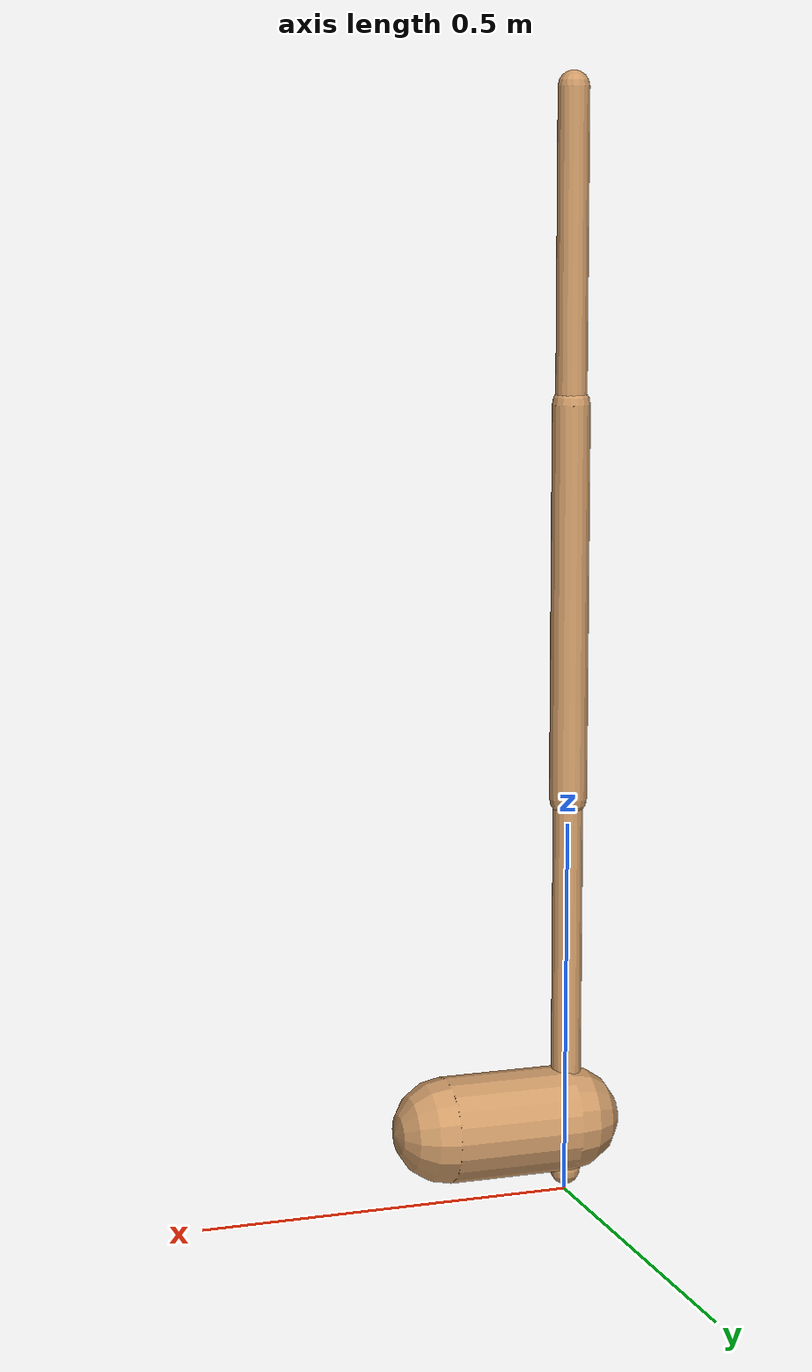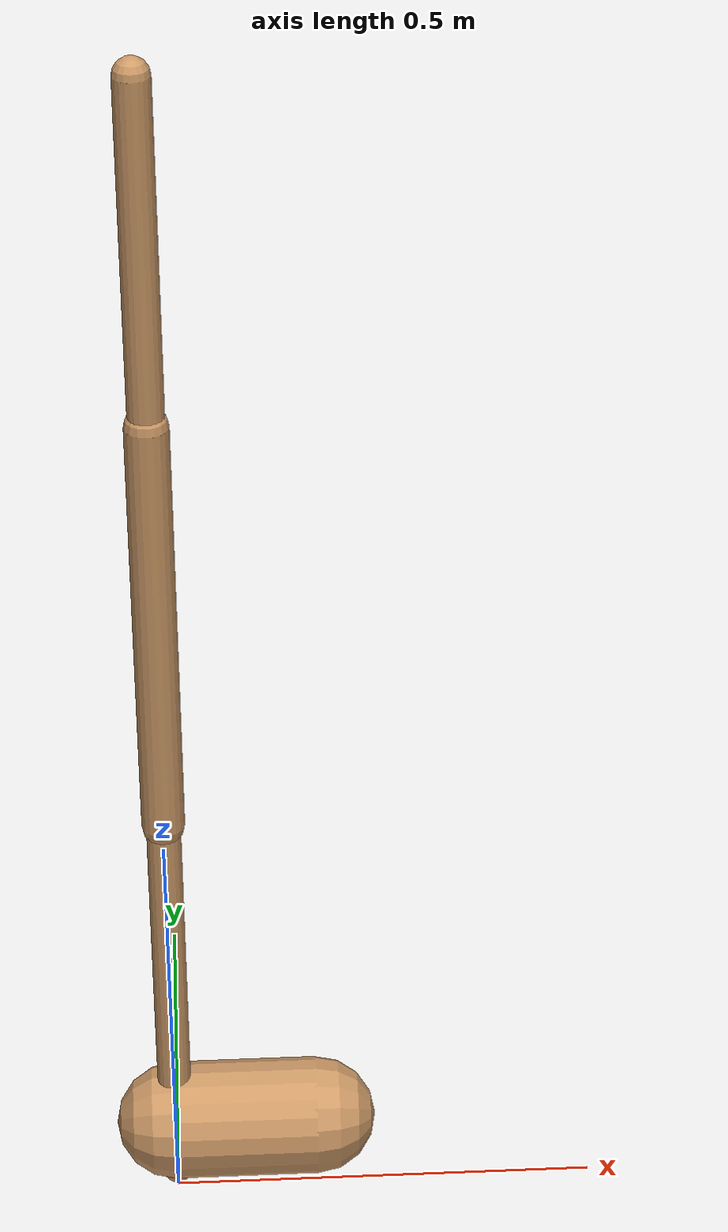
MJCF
<mujoco model="walker2d">
  <compiler angle="degree" coordinate="global" inertiafromgeom="true" />
  <default>
    <joint armature="0.01" damping=".1" limited="true" />
    <geom conaffinity="0" condim="3" contype="1" density="1000" friction="0.8 .1 .1" rgba="0.8 0.6 .4 1" />
  </default>
  <option integrator="RK4" timestep="0.002" />
  <worldbody>

    <body name="torso" pos="0 0 0.13725467449996118">
      <joint armature="0" axis="1 0 0" damping="0" limited="false" name="ignorex" pos="0 0 0" stiffness="0" type="slide" />
      <joint armature="0" axis="0 0 1" damping="0" limited="false" name="ignorez" pos="0 0 0" ref="1.25" stiffness="0" type="slide" />
      <joint armature="0" axis="0 1 0" damping="0" limited="false" name="ignorey" pos="0 0 0" stiffness="0" type="hinge" />
      <geom fromto="0 0 1.45 0 0 1.05" name="torso_geom" size="0.02028964315796541" type="capsule" />
      <body name="thigh">
        <joint axis="0 -1 0" name="thigh_joint" pos="0 0 1.05" range="-150 0" type="hinge" />
        <geom fromto="0.0 0.0 1.05 0.0 0.0 0.5349846278684394" name="thigh_geom" size="0.024601370703149435" type="capsule" />
        <body name="leg" pos="0.0 0.0 -0.06501537213156061">
          <joint axis="0 -1 0" name="leg_joint" pos="0 0 0.6" range="-150 0" type="hinge" />
          <geom fromto="0.0 0.0 0.6 0.0 0.0 0.027760697631599385" name="leg_geom" size="0.019681096562519547" type="capsule" />
          <body name="foot" pos="0.0 0.0 -0.07223930236840062">
            <joint axis="0 -1 0" name="foot_joint" pos="0 0 0.1" range="-45 45" type="hinge" />
            <geom fromto="0.0 0.0 0.1 0.16929249345232894 0.0 0.1" name="foot_geom" size="0.06989343682526003" type="capsule" />
          </body>
        </body>
      </body>

      <body name="thigh_left">
        <joint axis="0 -1 0" name="thigh_left_joint" pos="0 0 1.05" range="-150 0" type="hinge" />
        <geom fromto="0.0 0.0 1.05 0.0 0.0 0.5349846278684394" name="thigh_left_geom" rgba=".7 .3 .6 1" size="0.024601370703149435" type="capsule" />
        <body name="leg_left" pos="0.0 0.0 -0.06501537213156061">
          <joint axis="0 -1 0" name="leg_left_joint" pos="0 0 0.6" range="-150 0" type="hinge" />
          <geom fromto="0.0 0.0 0.6 0.0 0.0 0.027760697631599385" name="leg_left_geom" rgba=".7 .3 .6 1" size="0.019681096562519547" type="capsule" />
          <body name="foot_left" pos="0.0 0.0 -0.07223930236840062">
            <joint axis="0 -1 0" name="foot_left_joint" pos="0 0 0.1" range="-45 45" type="hinge" />
            <geom fromto="0.0 0.0 0.1 0.16929249345232894 0.0 0.1" name="foot_left_geom" rgba=".7 .3 .6 1" size="0.06989343682526003" type="capsule" />
          </body>
        </body>
      </body>
    </body>
  </worldbody>
  <actuator>

    <motor ctrllimited="true" ctrlrange="-1.0 1.0" gear="100" joint="thigh_joint" />
    <motor ctrllimited="true" ctrlrange="-1.0 1.0" gear="100" joint="leg_joint" />
    <motor ctrllimited="true" ctrlrange="-1.0 1.0" gear="100" joint="foot_joint" />
    <motor ctrllimited="true" ctrlrange="-1.0 1.0" gear="100" joint="thigh_left_joint" />
    <motor ctrllimited="true" ctrlrange="-1.0 1.0" gear="100" joint="leg_left_joint" />
    <motor ctrllimited="true" ctrlrange="-1.0 1.0" gear="100" joint="foot_left_joint" />

  </actuator>
</mujoco>
